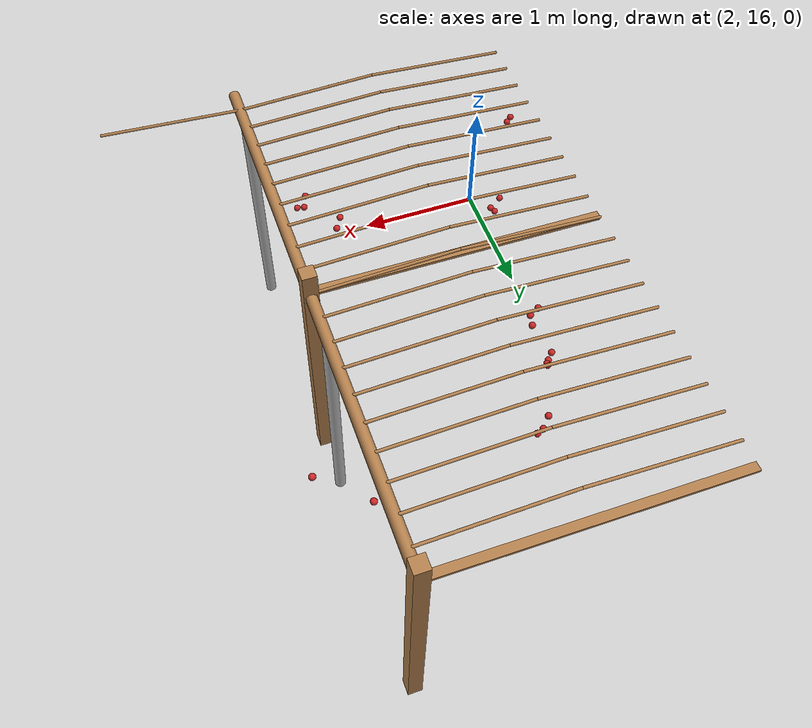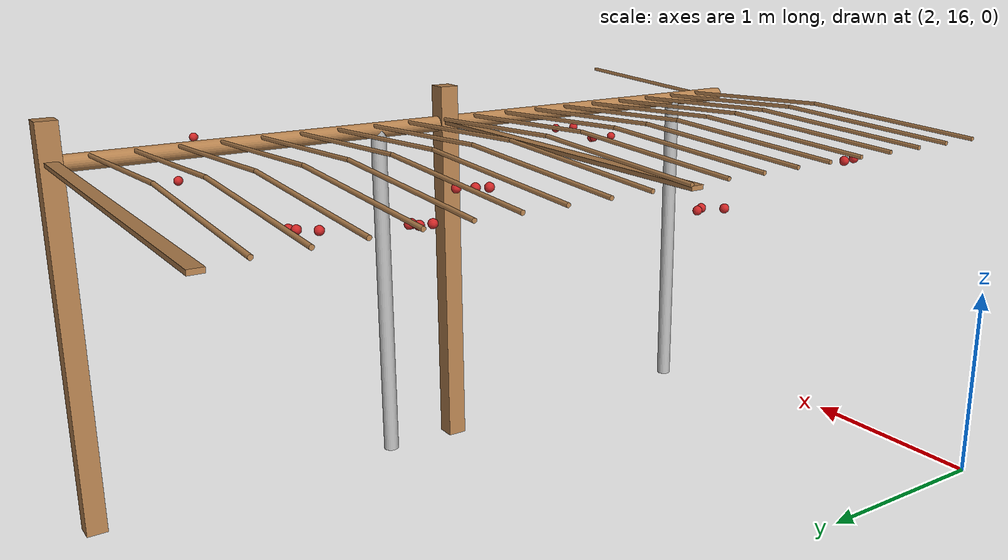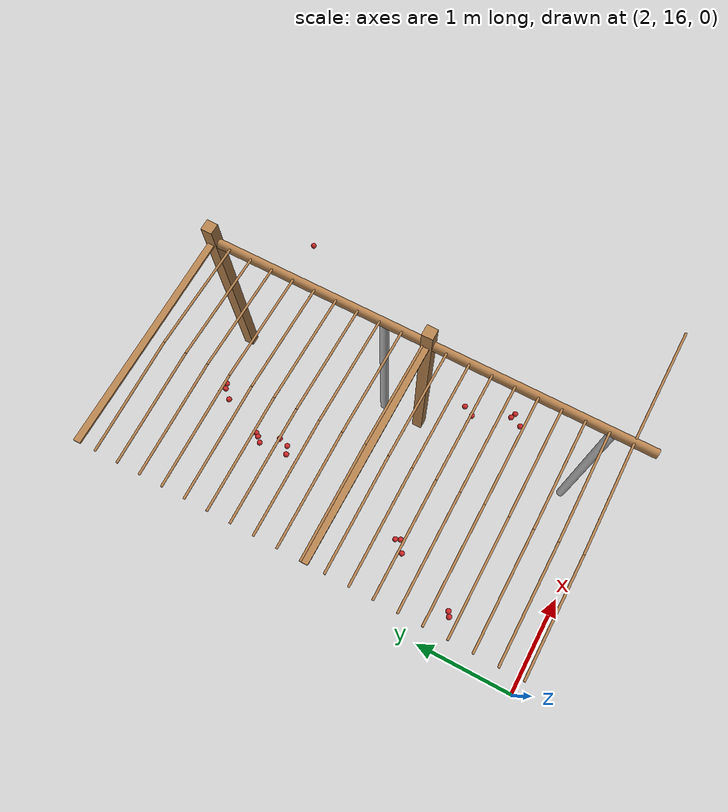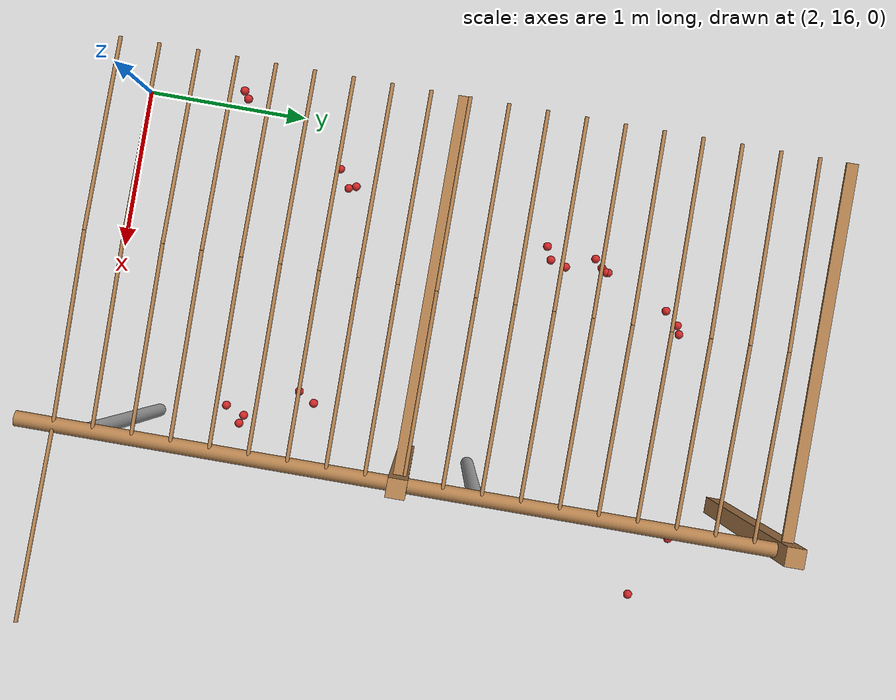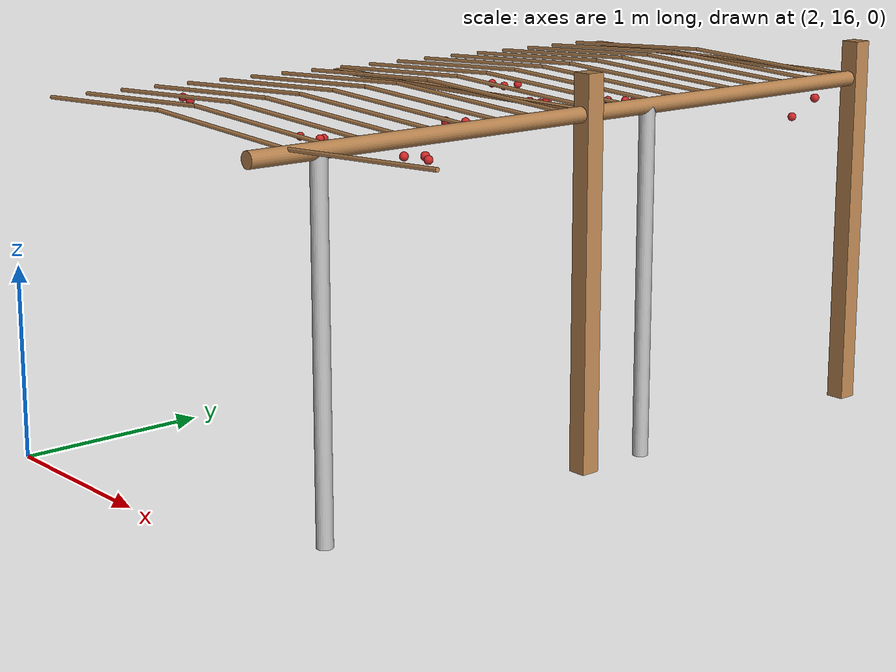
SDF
<sdf version="1.4">
 <model name="pergola">
  <include><name>post_31</name><pose>4.0 18.0 0 0 0 0</pose><uri>model://post</uri></include>
  <include><name>post_32</name><pose>4.0 20.0 0 0 0 0</pose><uri>model://post</uri></include>
  <link name="beam_20">
   <pose>3.0 18.0 1.81 0 0 0</pose>
   <collision name="collision"><geometry><box><size>2.0 0.06 0.02</size></box></geometry></collision>
   <visual name="visual">
    <geometry><box><size>2.0 0.06 0.02</size></box></geometry>
    <material><script><name>Gazebo/Wood</name></script></material>
   </visual>
   <inertial>
    <mass>5</mass>
    <inertia>
     <ixx>0.0016666666666666668</ixx>
     <ixy>0.0</ixy>
     <ixz>0.0</ixz>
     <iyy>1.6681666666666664</iyy>
     <iyz>0.0</iyz>
     <izz>1.6668333333333332</izz>
    </inertia>
   </inertial>
  </link>
  <link name="beam_21">
   <pose>3.0 20.0 1.81 0 0 0</pose>
   <collision name="collision"><geometry><box><size>2.0 0.06 0.02</size></box></geometry></collision>
   <visual name="visual">
    <geometry><box><size>2.0 0.06 0.02</size></box></geometry>
    <material><script><name>Gazebo/Wood</name></script></material>
   </visual>
   <inertial>
    <mass>5</mass>
    <inertia>
     <ixx>0.0016666666666666668</ixx>
     <ixy>0.0</ixy>
     <ixz>0.0</ixz>
     <iyy>1.6681666666666664</iyy>
     <iyz>0.0</iyz>
     <izz>1.6668333333333332</izz>
    </inertia>
   </inertial>
  </link>
  <include><name>tree_28</name><pose>4.0 16.4 0 0 0 0</pose><uri>model://tree_trunk</uri></include>
  <include><name>tree_29</name><pose>4.0 18.4 0 0 0 0</pose><uri>model://tree_trunk</uri></include>
  <link name="baseBranch_28">
   <pose>4.0 17.0 1.8 1.5707963267948966 0 0</pose>
   <collision name="collision">
    <geometry><cylinder><radius>0.04</radius><length>1.94</length></cylinder></geometry>
   </collision>
   <visual name="visual">
    <geometry><cylinder><radius>0.04</radius><length>1.94</length></cylinder></geometry>
    <material><script><name>Gazebo/WoodFloor</name></script></material>
   </visual>
   <inertial>
    <mass>10</mass>
    <inertia>
     <ixx>3.140333333333333</ixx>
     <ixy>0.0</ixy>
     <ixz>0.0</ixz>
     <iyy>3.140333333333333</iyy>
     <iyz>0.0</iyz>
     <izz>0.008</izz>
    </inertia>
   </inertial>
  </link>
  <link name="baseBranch_29">
   <pose>4.0 19.0 1.8 1.5707963267948966 0 0</pose>
   <collision name="collision">
    <geometry><cylinder><radius>0.04</radius><length>1.94</length></cylinder></geometry>
   </collision>
   <visual name="visual">
    <geometry><cylinder><radius>0.04</radius><length>1.94</length></cylinder></geometry>
    <material><script><name>Gazebo/WoodFloor</name></script></material>
   </visual>
   <inertial>
    <mass>10</mass>
    <inertia>
     <ixx>3.140333333333333</ixx>
     <ixy>0.0</ixy>
     <ixz>0.0</ixz>
     <iyy>3.140333333333333</iyy>
     <iyz>0.0</iyz>
     <izz>0.008</izz>
    </inertia>
   </inertial>
  </link>
  <link name="vine_362">
   <pose>2.5 16.23 1.85 0 1.5208379310729538 0</pose>
   <collision name="collision">
    <geometry><cylinder><radius>0.01</radius><length>1.0012492197250393</length></cylinder></geometry>
   </collision>
   <visual name="visual">
    <geometry><cylinder><radius>0.01</radius><length>1.0012492197250393</length></cylinder></geometry>
    <material><script><name>Gazebo/WoodFloor</name></script></material>
   </visual>
   <inertial>
    <mass>5</mass>
    <inertia>
     <ixx>0.41783333333333345</ixx>
     <ixy>0.0</ixy>
     <ixz>0.0</ixz>
     <iyy>0.41783333333333345</iyy>
     <iyz>0.0</iyz>
     <izz>0.00025</izz>
    </inertia>
   </inertial>
  </link>
  <link name="vine_363">
   <pose>3.5 16.23 1.85 0 -1.5208379310729538 0</pose>
   <collision name="collision">
    <geometry><cylinder><radius>0.01</radius><length>1.0012492197250393</length></cylinder></geometry>
   </collision>
   <visual name="visual">
    <geometry><cylinder><radius>0.01</radius><length>1.0012492197250393</length></cylinder></geometry>
    <material><script><name>Gazebo/WoodFloor</name></script></material>
   </visual>
   <inertial>
    <mass>5</mass>
    <inertia>
     <ixx>0.41783333333333345</ixx>
     <ixy>0.0</ixy>
     <ixz>0.0</ixz>
     <iyy>0.41783333333333345</iyy>
     <iyz>0.0</iyz>
     <izz>0.00025</izz>
    </inertia>
   </inertial>
  </link>
  <link name="vine_364">
   <pose>2.5 16.430000000000003 1.85 0 1.5208379310729538 0</pose>
   <collision name="collision">
    <geometry><cylinder><radius>0.01</radius><length>1.0012492197250393</length></cylinder></geometry>
   </collision>
   <visual name="visual">
    <geometry><cylinder><radius>0.01</radius><length>1.0012492197250393</length></cylinder></geometry>
    <material><script><name>Gazebo/WoodFloor</name></script></material>
   </visual>
   <inertial>
    <mass>5</mass>
    <inertia>
     <ixx>0.41783333333333345</ixx>
     <ixy>0.0</ixy>
     <ixz>0.0</ixz>
     <iyy>0.41783333333333345</iyy>
     <iyz>0.0</iyz>
     <izz>0.00025</izz>
    </inertia>
   </inertial>
  </link>
  <link name="vine_365">
   <pose>3.5 16.430000000000003 1.85 0 -1.5208379310729538 0</pose>
   <collision name="collision">
    <geometry><cylinder><radius>0.01</radius><length>1.0012492197250393</length></cylinder></geometry>
   </collision>
   <visual name="visual">
    <geometry><cylinder><radius>0.01</radius><length>1.0012492197250393</length></cylinder></geometry>
    <material><script><name>Gazebo/WoodFloor</name></script></material>
   </visual>
   <inertial>
    <mass>5</mass>
    <inertia>
     <ixx>0.41783333333333345</ixx>
     <ixy>0.0</ixy>
     <ixz>0.0</ixz>
     <iyy>0.41783333333333345</iyy>
     <iyz>0.0</iyz>
     <izz>0.00025</izz>
    </inertia>
   </inertial>
  </link>
  <link name="vine_366">
   <pose>2.5 16.630000000000003 1.85 0 1.5208379310729538 0</pose>
   <collision name="collision">
    <geometry><cylinder><radius>0.01</radius><length>1.0012492197250393</length></cylinder></geometry>
   </collision>
   <visual name="visual">
    <geometry><cylinder><radius>0.01</radius><length>1.0012492197250393</length></cylinder></geometry>
    <material><script><name>Gazebo/WoodFloor</name></script></material>
   </visual>
   <inertial>
    <mass>5</mass>
    <inertia>
     <ixx>0.41783333333333345</ixx>
     <ixy>0.0</ixy>
     <ixz>0.0</ixz>
     <iyy>0.41783333333333345</iyy>
     <iyz>0.0</iyz>
     <izz>0.00025</izz>
    </inertia>
   </inertial>
  </link>
  <link name="vine_367">
   <pose>3.5 16.630000000000003 1.85 0 -1.5208379310729538 0</pose>
   <collision name="collision">
    <geometry><cylinder><radius>0.01</radius><length>1.0012492197250393</length></cylinder></geometry>
   </collision>
   <visual name="visual">
    <geometry><cylinder><radius>0.01</radius><length>1.0012492197250393</length></cylinder></geometry>
    <material><script><name>Gazebo/WoodFloor</name></script></material>
   </visual>
   <inertial>
    <mass>5</mass>
    <inertia>
     <ixx>0.41783333333333345</ixx>
     <ixy>0.0</ixy>
     <ixz>0.0</ixz>
     <iyy>0.41783333333333345</iyy>
     <iyz>0.0</iyz>
     <izz>0.00025</izz>
    </inertia>
   </inertial>
  </link>
  <link name="vine_368">
   <pose>2.5 16.830000000000002 1.85 0 1.5208379310729538 0</pose>
   <collision name="collision">
    <geometry><cylinder><radius>0.01</radius><length>1.0012492197250393</length></cylinder></geometry>
   </collision>
   <visual name="visual">
    <geometry><cylinder><radius>0.01</radius><length>1.0012492197250393</length></cylinder></geometry>
    <material><script><name>Gazebo/WoodFloor</name></script></material>
   </visual>
   <inertial>
    <mass>5</mass>
    <inertia>
     <ixx>0.41783333333333345</ixx>
     <ixy>0.0</ixy>
     <ixz>0.0</ixz>
     <iyy>0.41783333333333345</iyy>
     <iyz>0.0</iyz>
     <izz>0.00025</izz>
    </inertia>
   </inertial>
  </link>
  <link name="vine_369">
   <pose>3.5 16.830000000000002 1.85 0 -1.5208379310729538 0</pose>
   <collision name="collision">
    <geometry><cylinder><radius>0.01</radius><length>1.0012492197250393</length></cylinder></geometry>
   </collision>
   <visual name="visual">
    <geometry><cylinder><radius>0.01</radius><length>1.0012492197250393</length></cylinder></geometry>
    <material><script><name>Gazebo/WoodFloor</name></script></material>
   </visual>
   <inertial>
    <mass>5</mass>
    <inertia>
     <ixx>0.41783333333333345</ixx>
     <ixy>0.0</ixy>
     <ixz>0.0</ixz>
     <iyy>0.41783333333333345</iyy>
     <iyz>0.0</iyz>
     <izz>0.00025</izz>
    </inertia>
   </inertial>
  </link>
  <link name="vine_370">
   <pose>2.5 17.03 1.85 0 1.5208379310729538 0</pose>
   <collision name="collision">
    <geometry><cylinder><radius>0.01</radius><length>1.0012492197250393</length></cylinder></geometry>
   </collision>
   <visual name="visual">
    <geometry><cylinder><radius>0.01</radius><length>1.0012492197250393</length></cylinder></geometry>
    <material><script><name>Gazebo/WoodFloor</name></script></material>
   </visual>
   <inertial>
    <mass>5</mass>
    <inertia>
     <ixx>0.41783333333333345</ixx>
     <ixy>0.0</ixy>
     <ixz>0.0</ixz>
     <iyy>0.41783333333333345</iyy>
     <iyz>0.0</iyz>
     <izz>0.00025</izz>
    </inertia>
   </inertial>
  </link>
  <link name="vine_371">
   <pose>3.5 17.03 1.85 0 -1.5208379310729538 0</pose>
   <collision name="collision">
    <geometry><cylinder><radius>0.01</radius><length>1.0012492197250393</length></cylinder></geometry>
   </collision>
   <visual name="visual">
    <geometry><cylinder><radius>0.01</radius><length>1.0012492197250393</length></cylinder></geometry>
    <material><script><name>Gazebo/WoodFloor</name></script></material>
   </visual>
   <inertial>
    <mass>5</mass>
    <inertia>
     <ixx>0.41783333333333345</ixx>
     <ixy>0.0</ixy>
     <ixz>0.0</ixz>
     <iyy>0.41783333333333345</iyy>
     <iyz>0.0</iyz>
     <izz>0.00025</izz>
    </inertia>
   </inertial>
  </link>
  <link name="vine_372">
   <pose>2.5 17.23 1.85 0 1.5208379310729538 0</pose>
   <collision name="collision">
    <geometry><cylinder><radius>0.01</radius><length>1.0012492197250393</length></cylinder></geometry>
   </collision>
   <visual name="visual">
    <geometry><cylinder><radius>0.01</radius><length>1.0012492197250393</length></cylinder></geometry>
    <material><script><name>Gazebo/WoodFloor</name></script></material>
   </visual>
   <inertial>
    <mass>5</mass>
    <inertia>
     <ixx>0.41783333333333345</ixx>
     <ixy>0.0</ixy>
     <ixz>0.0</ixz>
     <iyy>0.41783333333333345</iyy>
     <iyz>0.0</iyz>
     <izz>0.00025</izz>
    </inertia>
   </inertial>
  </link>
  <link name="vine_373">
   <pose>3.5 17.23 1.85 0 -1.5208379310729538 0</pose>
   <collision name="collision">
    <geometry><cylinder><radius>0.01</radius><length>1.0012492197250393</length></cylinder></geometry>
   </collision>
   <visual name="visual">
    <geometry><cylinder><radius>0.01</radius><length>1.0012492197250393</length></cylinder></geometry>
    <material><script><name>Gazebo/WoodFloor</name></script></material>
   </visual>
   <inertial>
    <mass>5</mass>
    <inertia>
     <ixx>0.41783333333333345</ixx>
     <ixy>0.0</ixy>
     <ixz>0.0</ixz>
     <iyy>0.41783333333333345</iyy>
     <iyz>0.0</iyz>
     <izz>0.00025</izz>
    </inertia>
   </inertial>
  </link>
  <link name="vine_374">
   <pose>2.5 17.430000000000003 1.85 0 1.5208379310729538 0</pose>
   <collision name="collision">
    <geometry><cylinder><radius>0.01</radius><length>1.0012492197250393</length></cylinder></geometry>
   </collision>
   <visual name="visual">
    <geometry><cylinder><radius>0.01</radius><length>1.0012492197250393</length></cylinder></geometry>
    <material><script><name>Gazebo/WoodFloor</name></script></material>
   </visual>
   <inertial>
    <mass>5</mass>
    <inertia>
     <ixx>0.41783333333333345</ixx>
     <ixy>0.0</ixy>
     <ixz>0.0</ixz>
     <iyy>0.41783333333333345</iyy>
     <iyz>0.0</iyz>
     <izz>0.00025</izz>
    </inertia>
   </inertial>
  </link>
  <link name="vine_375">
   <pose>3.5 17.430000000000003 1.85 0 -1.5208379310729538 0</pose>
   <collision name="collision">
    <geometry><cylinder><radius>0.01</radius><length>1.0012492197250393</length></cylinder></geometry>
   </collision>
   <visual name="visual">
    <geometry><cylinder><radius>0.01</radius><length>1.0012492197250393</length></cylinder></geometry>
    <material><script><name>Gazebo/WoodFloor</name></script></material>
   </visual>
   <inertial>
    <mass>5</mass>
    <inertia>
     <ixx>0.41783333333333345</ixx>
     <ixy>0.0</ixy>
     <ixz>0.0</ixz>
     <iyy>0.41783333333333345</iyy>
     <iyz>0.0</iyz>
     <izz>0.00025</izz>
    </inertia>
   </inertial>
  </link>
  <link name="vine_376">
   <pose>2.5 17.630000000000003 1.85 0 1.5208379310729538 0</pose>
   <collision name="collision">
    <geometry><cylinder><radius>0.01</radius><length>1.0012492197250393</length></cylinder></geometry>
   </collision>
   <visual name="visual">
    <geometry><cylinder><radius>0.01</radius><length>1.0012492197250393</length></cylinder></geometry>
    <material><script><name>Gazebo/WoodFloor</name></script></material>
   </visual>
   <inertial>
    <mass>5</mass>
    <inertia>
     <ixx>0.41783333333333345</ixx>
     <ixy>0.0</ixy>
     <ixz>0.0</ixz>
     <iyy>0.41783333333333345</iyy>
     <iyz>0.0</iyz>
     <izz>0.00025</izz>
    </inertia>
   </inertial>
  </link>
  <link name="vine_377">
   <pose>3.5 17.630000000000003 1.85 0 -1.5208379310729538 0</pose>
   <collision name="collision">
    <geometry><cylinder><radius>0.01</radius><length>1.0012492197250393</length></cylinder></geometry>
   </collision>
   <visual name="visual">
    <geometry><cylinder><radius>0.01</radius><length>1.0012492197250393</length></cylinder></geometry>
    <material><script><name>Gazebo/WoodFloor</name></script></material>
   </visual>
   <inertial>
    <mass>5</mass>
    <inertia>
     <ixx>0.41783333333333345</ixx>
     <ixy>0.0</ixy>
     <ixz>0.0</ixz>
     <iyy>0.41783333333333345</iyy>
     <iyz>0.0</iyz>
     <izz>0.00025</izz>
    </inertia>
   </inertial>
  </link>
  <link name="vine_378">
   <pose>2.5 17.830000000000002 1.85 0 1.5208379310729538 0</pose>
   <collision name="collision">
    <geometry><cylinder><radius>0.01</radius><length>1.0012492197250393</length></cylinder></geometry>
   </collision>
   <visual name="visual">
    <geometry><cylinder><radius>0.01</radius><length>1.0012492197250393</length></cylinder></geometry>
    <material><script><name>Gazebo/WoodFloor</name></script></material>
   </visual>
   <inertial>
    <mass>5</mass>
    <inertia>
     <ixx>0.41783333333333345</ixx>
     <ixy>0.0</ixy>
     <ixz>0.0</ixz>
     <iyy>0.41783333333333345</iyy>
     <iyz>0.0</iyz>
     <izz>0.00025</izz>
    </inertia>
   </inertial>
  </link>
  <link name="vine_379">
   <pose>3.5 17.830000000000002 1.85 0 -1.5208379310729538 0</pose>
   <collision name="collision">
    <geometry><cylinder><radius>0.01</radius><length>1.0012492197250393</length></cylinder></geometry>
   </collision>
   <visual name="visual">
    <geometry><cylinder><radius>0.01</radius><length>1.0012492197250393</length></cylinder></geometry>
    <material><script><name>Gazebo/WoodFloor</name></script></material>
   </visual>
   <inertial>
    <mass>5</mass>
    <inertia>
     <ixx>0.41783333333333345</ixx>
     <ixy>0.0</ixy>
     <ixz>0.0</ixz>
     <iyy>0.41783333333333345</iyy>
     <iyz>0.0</iyz>
     <izz>0.00025</izz>
    </inertia>
   </inertial>
  </link>
  <link name="vine_380">
   <pose>2.5 18.03 1.85 0 1.5208379310729538 0</pose>
   <collision name="collision">
    <geometry><cylinder><radius>0.01</radius><length>1.0012492197250393</length></cylinder></geometry>
   </collision>
   <visual name="visual">
    <geometry><cylinder><radius>0.01</radius><length>1.0012492197250393</length></cylinder></geometry>
    <material><script><name>Gazebo/WoodFloor</name></script></material>
   </visual>
   <inertial>
    <mass>5</mass>
    <inertia>
     <ixx>0.41783333333333345</ixx>
     <ixy>0.0</ixy>
     <ixz>0.0</ixz>
     <iyy>0.41783333333333345</iyy>
     <iyz>0.0</iyz>
     <izz>0.00025</izz>
    </inertia>
   </inertial>
  </link>
  <link name="vine_381">
   <pose>3.5 18.03 1.85 0 -1.5208379310729538 0</pose>
   <collision name="collision">
    <geometry><cylinder><radius>0.01</radius><length>1.0012492197250393</length></cylinder></geometry>
   </collision>
   <visual name="visual">
    <geometry><cylinder><radius>0.01</radius><length>1.0012492197250393</length></cylinder></geometry>
    <material><script><name>Gazebo/WoodFloor</name></script></material>
   </visual>
   <inertial>
    <mass>5</mass>
    <inertia>
     <ixx>0.41783333333333345</ixx>
     <ixy>0.0</ixy>
     <ixz>0.0</ixz>
     <iyy>0.41783333333333345</iyy>
     <iyz>0.0</iyz>
     <izz>0.00025</izz>
    </inertia>
   </inertial>
  </link>
  <link name="vine_382">
   <pose>2.5 18.23 1.85 0 1.5208379310729538 0</pose>
   <collision name="collision">
    <geometry><cylinder><radius>0.01</radius><length>1.0012492197250393</length></cylinder></geometry>
   </collision>
   <visual name="visual">
    <geometry><cylinder><radius>0.01</radius><length>1.0012492197250393</length></cylinder></geometry>
    <material><script><name>Gazebo/WoodFloor</name></script></material>
   </visual>
   <inertial>
    <mass>5</mass>
    <inertia>
     <ixx>0.41783333333333345</ixx>
     <ixy>0.0</ixy>
     <ixz>0.0</ixz>
     <iyy>0.41783333333333345</iyy>
     <iyz>0.0</iyz>
     <izz>0.00025</izz>
    </inertia>
   </inertial>
  </link>
  <link name="vine_383">
   <pose>3.5 18.23 1.85 0 -1.5208379310729538 0</pose>
   <collision name="collision">
    <geometry><cylinder><radius>0.01</radius><length>1.0012492197250393</length></cylinder></geometry>
   </collision>
   <visual name="visual">
    <geometry><cylinder><radius>0.01</radius><length>1.0012492197250393</length></cylinder></geometry>
    <material><script><name>Gazebo/WoodFloor</name></script></material>
   </visual>
   <inertial>
    <mass>5</mass>
    <inertia>
     <ixx>0.41783333333333345</ixx>
     <ixy>0.0</ixy>
     <ixz>0.0</ixz>
     <iyy>0.41783333333333345</iyy>
     <iyz>0.0</iyz>
     <izz>0.00025</izz>
    </inertia>
   </inertial>
  </link>
  <link name="vine_384">
   <pose>2.5 18.430000000000003 1.85 0 1.5208379310729538 0</pose>
   <collision name="collision">
    <geometry><cylinder><radius>0.01</radius><length>1.0012492197250393</length></cylinder></geometry>
   </collision>
   <visual name="visual">
    <geometry><cylinder><radius>0.01</radius><length>1.0012492197250393</length></cylinder></geometry>
    <material><script><name>Gazebo/WoodFloor</name></script></material>
   </visual>
   <inertial>
    <mass>5</mass>
    <inertia>
     <ixx>0.41783333333333345</ixx>
     <ixy>0.0</ixy>
     <ixz>0.0</ixz>
     <iyy>0.41783333333333345</iyy>
     <iyz>0.0</iyz>
     <izz>0.00025</izz>
    </inertia>
   </inertial>
  </link>
  <link name="vine_385">
   <pose>3.5 18.430000000000003 1.85 0 -1.5208379310729538 0</pose>
   <collision name="collision">
    <geometry><cylinder><radius>0.01</radius><length>1.0012492197250393</length></cylinder></geometry>
   </collision>
   <visual name="visual">
    <geometry><cylinder><radius>0.01</radius><length>1.0012492197250393</length></cylinder></geometry>
    <material><script><name>Gazebo/WoodFloor</name></script></material>
   </visual>
   <inertial>
    <mass>5</mass>
    <inertia>
     <ixx>0.41783333333333345</ixx>
     <ixy>0.0</ixy>
     <ixz>0.0</ixz>
     <iyy>0.41783333333333345</iyy>
     <iyz>0.0</iyz>
     <izz>0.00025</izz>
    </inertia>
   </inertial>
  </link>
  <link name="vine_386">
   <pose>2.5 18.630000000000003 1.85 0 1.5208379310729538 0</pose>
   <collision name="collision">
    <geometry><cylinder><radius>0.01</radius><length>1.0012492197250393</length></cylinder></geometry>
   </collision>
   <visual name="visual">
    <geometry><cylinder><radius>0.01</radius><length>1.0012492197250393</length></cylinder></geometry>
    <material><script><name>Gazebo/WoodFloor</name></script></material>
   </visual>
   <inertial>
    <mass>5</mass>
    <inertia>
     <ixx>0.41783333333333345</ixx>
     <ixy>0.0</ixy>
     <ixz>0.0</ixz>
     <iyy>0.41783333333333345</iyy>
     <iyz>0.0</iyz>
     <izz>0.00025</izz>
    </inertia>
   </inertial>
  </link>
  <link name="vine_387">
   <pose>3.5 18.630000000000003 1.85 0 -1.5208379310729538 0</pose>
   <collision name="collision">
    <geometry><cylinder><radius>0.01</radius><length>1.0012492197250393</length></cylinder></geometry>
   </collision>
   <visual name="visual">
    <geometry><cylinder><radius>0.01</radius><length>1.0012492197250393</length></cylinder></geometry>
    <material><script><name>Gazebo/WoodFloor</name></script></material>
   </visual>
   <inertial>
    <mass>5</mass>
    <inertia>
     <ixx>0.41783333333333345</ixx>
     <ixy>0.0</ixy>
     <ixz>0.0</ixz>
     <iyy>0.41783333333333345</iyy>
     <iyz>0.0</iyz>
     <izz>0.00025</izz>
    </inertia>
   </inertial>
  </link>
  <link name="vine_388">
   <pose>2.5 18.830000000000002 1.85 0 1.5208379310729538 0</pose>
   <collision name="collision">
    <geometry><cylinder><radius>0.01</radius><length>1.0012492197250393</length></cylinder></geometry>
   </collision>
   <visual name="visual">
    <geometry><cylinder><radius>0.01</radius><length>1.0012492197250393</length></cylinder></geometry>
    <material><script><name>Gazebo/WoodFloor</name></script></material>
   </visual>
   <inertial>
    <mass>5</mass>
    <inertia>
     <ixx>0.41783333333333345</ixx>
     <ixy>0.0</ixy>
     <ixz>0.0</ixz>
     <iyy>0.41783333333333345</iyy>
     <iyz>0.0</iyz>
     <izz>0.00025</izz>
    </inertia>
   </inertial>
  </link>
  <link name="vine_389">
   <pose>3.5 18.830000000000002 1.85 0 -1.5208379310729538 0</pose>
   <collision name="collision">
    <geometry><cylinder><radius>0.01</radius><length>1.0012492197250393</length></cylinder></geometry>
   </collision>
   <visual name="visual">
    <geometry><cylinder><radius>0.01</radius><length>1.0012492197250393</length></cylinder></geometry>
    <material><script><name>Gazebo/WoodFloor</name></script></material>
   </visual>
   <inertial>
    <mass>5</mass>
    <inertia>
     <ixx>0.41783333333333345</ixx>
     <ixy>0.0</ixy>
     <ixz>0.0</ixz>
     <iyy>0.41783333333333345</iyy>
     <iyz>0.0</iyz>
     <izz>0.00025</izz>
    </inertia>
   </inertial>
  </link>
  <link name="vine_390">
   <pose>2.5 19.03 1.85 0 1.5208379310729538 0</pose>
   <collision name="collision">
    <geometry><cylinder><radius>0.01</radius><length>1.0012492197250393</length></cylinder></geometry>
   </collision>
   <visual name="visual">
    <geometry><cylinder><radius>0.01</radius><length>1.0012492197250393</length></cylinder></geometry>
    <material><script><name>Gazebo/WoodFloor</name></script></material>
   </visual>
   <inertial>
    <mass>5</mass>
    <inertia>
     <ixx>0.41783333333333345</ixx>
     <ixy>0.0</ixy>
     <ixz>0.0</ixz>
     <iyy>0.41783333333333345</iyy>
     <iyz>0.0</iyz>
     <izz>0.00025</izz>
    </inertia>
   </inertial>
  </link>
  <link name="vine_391">
   <pose>3.5 19.03 1.85 0 -1.5208379310729538 0</pose>
   <collision name="collision">
    <geometry><cylinder><radius>0.01</radius><length>1.0012492197250393</length></cylinder></geometry>
   </collision>
   <visual name="visual">
    <geometry><cylinder><radius>0.01</radius><length>1.0012492197250393</length></cylinder></geometry>
    <material><script><name>Gazebo/WoodFloor</name></script></material>
   </visual>
   <inertial>
    <mass>5</mass>
    <inertia>
     <ixx>0.41783333333333345</ixx>
     <ixy>0.0</ixy>
     <ixz>0.0</ixz>
     <iyy>0.41783333333333345</iyy>
     <iyz>0.0</iyz>
     <izz>0.00025</izz>
    </inertia>
   </inertial>
  </link>
  <link name="vine_392">
   <pose>2.5 19.230000000000004 1.85 0 1.5208379310729538 0</pose>
   <collision name="collision">
    <geometry><cylinder><radius>0.01</radius><length>1.0012492197250393</length></cylinder></geometry>
   </collision>
   <visual name="visual">
    <geometry><cylinder><radius>0.01</radius><length>1.0012492197250393</length></cylinder></geometry>
    <material><script><name>Gazebo/WoodFloor</name></script></material>
   </visual>
   <inertial>
    <mass>5</mass>
    <inertia>
     <ixx>0.41783333333333345</ixx>
     <ixy>0.0</ixy>
     <ixz>0.0</ixz>
     <iyy>0.41783333333333345</iyy>
     <iyz>0.0</iyz>
     <izz>0.00025</izz>
    </inertia>
   </inertial>
  </link>
  <link name="vine_393">
   <pose>3.5 19.230000000000004 1.85 0 -1.5208379310729538 0</pose>
   <collision name="collision">
    <geometry><cylinder><radius>0.01</radius><length>1.0012492197250393</length></cylinder></geometry>
   </collision>
   <visual name="visual">
    <geometry><cylinder><radius>0.01</radius><length>1.0012492197250393</length></cylinder></geometry>
    <material><script><name>Gazebo/WoodFloor</name></script></material>
   </visual>
   <inertial>
    <mass>5</mass>
    <inertia>
     <ixx>0.41783333333333345</ixx>
     <ixy>0.0</ixy>
     <ixz>0.0</ixz>
     <iyy>0.41783333333333345</iyy>
     <iyz>0.0</iyz>
     <izz>0.00025</izz>
    </inertia>
   </inertial>
  </link>
  <link name="vine_394">
   <pose>2.5 19.430000000000003 1.85 0 1.5208379310729538 0</pose>
   <collision name="collision">
    <geometry><cylinder><radius>0.01</radius><length>1.0012492197250393</length></cylinder></geometry>
   </collision>
   <visual name="visual">
    <geometry><cylinder><radius>0.01</radius><length>1.0012492197250393</length></cylinder></geometry>
    <material><script><name>Gazebo/WoodFloor</name></script></material>
   </visual>
   <inertial>
    <mass>5</mass>
    <inertia>
     <ixx>0.41783333333333345</ixx>
     <ixy>0.0</ixy>
     <ixz>0.0</ixz>
     <iyy>0.41783333333333345</iyy>
     <iyz>0.0</iyz>
     <izz>0.00025</izz>
    </inertia>
   </inertial>
  </link>
  <link name="vine_395">
   <pose>3.5 19.430000000000003 1.85 0 -1.5208379310729538 0</pose>
   <collision name="collision">
    <geometry><cylinder><radius>0.01</radius><length>1.0012492197250393</length></cylinder></geometry>
   </collision>
   <visual name="visual">
    <geometry><cylinder><radius>0.01</radius><length>1.0012492197250393</length></cylinder></geometry>
    <material><script><name>Gazebo/WoodFloor</name></script></material>
   </visual>
   <inertial>
    <mass>5</mass>
    <inertia>
     <ixx>0.41783333333333345</ixx>
     <ixy>0.0</ixy>
     <ixz>0.0</ixz>
     <iyy>0.41783333333333345</iyy>
     <iyz>0.0</iyz>
     <izz>0.00025</izz>
    </inertia>
   </inertial>
  </link>
  <link name="vine_396">
   <pose>2.5 19.630000000000003 1.85 0 1.5208379310729538 0</pose>
   <collision name="collision">
    <geometry><cylinder><radius>0.01</radius><length>1.0012492197250393</length></cylinder></geometry>
   </collision>
   <visual name="visual">
    <geometry><cylinder><radius>0.01</radius><length>1.0012492197250393</length></cylinder></geometry>
    <material><script><name>Gazebo/WoodFloor</name></script></material>
   </visual>
   <inertial>
    <mass>5</mass>
    <inertia>
     <ixx>0.41783333333333345</ixx>
     <ixy>0.0</ixy>
     <ixz>0.0</ixz>
     <iyy>0.41783333333333345</iyy>
     <iyz>0.0</iyz>
     <izz>0.00025</izz>
    </inertia>
   </inertial>
  </link>
  <link name="vine_397">
   <pose>3.5 19.630000000000003 1.85 0 -1.5208379310729538 0</pose>
   <collision name="collision">
    <geometry><cylinder><radius>0.01</radius><length>1.0012492197250393</length></cylinder></geometry>
   </collision>
   <visual name="visual">
    <geometry><cylinder><radius>0.01</radius><length>1.0012492197250393</length></cylinder></geometry>
    <material><script><name>Gazebo/WoodFloor</name></script></material>
   </visual>
   <inertial>
    <mass>5</mass>
    <inertia>
     <ixx>0.41783333333333345</ixx>
     <ixy>0.0</ixy>
     <ixz>0.0</ixz>
     <iyy>0.41783333333333345</iyy>
     <iyz>0.0</iyz>
     <izz>0.00025</izz>
    </inertia>
   </inertial>
  </link>
  <link name="vine_398">
   <pose>2.5 19.830000000000002 1.85 0 1.5208379310729538 0</pose>
   <collision name="collision">
    <geometry><cylinder><radius>0.01</radius><length>1.0012492197250393</length></cylinder></geometry>
   </collision>
   <visual name="visual">
    <geometry><cylinder><radius>0.01</radius><length>1.0012492197250393</length></cylinder></geometry>
    <material><script><name>Gazebo/WoodFloor</name></script></material>
   </visual>
   <inertial>
    <mass>5</mass>
    <inertia>
     <ixx>0.41783333333333345</ixx>
     <ixy>0.0</ixy>
     <ixz>0.0</ixz>
     <iyy>0.41783333333333345</iyy>
     <iyz>0.0</iyz>
     <izz>0.00025</izz>
    </inertia>
   </inertial>
  </link>
  <link name="vine_399">
   <pose>3.5 19.830000000000002 1.85 0 -1.5208379310729538 0</pose>
   <collision name="collision">
    <geometry><cylinder><radius>0.01</radius><length>1.0012492197250393</length></cylinder></geometry>
   </collision>
   <visual name="visual">
    <geometry><cylinder><radius>0.01</radius><length>1.0012492197250393</length></cylinder></geometry>
    <material><script><name>Gazebo/WoodFloor</name></script></material>
   </visual>
   <inertial>
    <mass>5</mass>
    <inertia>
     <ixx>0.41783333333333345</ixx>
     <ixy>0.0</ixy>
     <ixz>0.0</ixz>
     <iyy>0.41783333333333345</iyy>
     <iyz>0.0</iyz>
     <izz>0.00025</izz>
    </inertia>
   </inertial>
  </link>
  <link name="vine_562">
   <pose>4.5 16.23 1.85 0 1.5208379310729538 0</pose>
   <collision name="collision">
    <geometry><cylinder><radius>0.01</radius><length>1.0012492197250393</length></cylinder></geometry>
   </collision>
   <visual name="visual">
    <geometry><cylinder><radius>0.01</radius><length>1.0012492197250393</length></cylinder></geometry>
    <material><script><name>Gazebo/WoodFloor</name></script></material>
   </visual>
   <inertial>
    <mass>5</mass>
    <inertia>
     <ixx>0.41783333333333345</ixx>
     <ixy>0.0</ixy>
     <ixz>0.0</ixz>
     <iyy>0.41783333333333345</iyy>
     <iyz>0.0</iyz>
     <izz>0.00025</izz>
    </inertia>
   </inertial>
  </link>
  <link name="fruit_17">
   <pose>2.6875868006532104 18.815287319987785 1.637580635463588 0 0 0</pose>
   <collision name="fruit_collision_17"><geometry><sphere><radius>0.022</radius></sphere></geometry></collision>
   <visual name="visual">
    <geometry><sphere><radius>0.022</radius></sphere></geometry>
    <material><script><name>Gazebo/Red</name></script></material>
   </visual>
   <inertial>
    <mass>0.05</mass>
    <inertia>
     <ixx>9.679999999999999e-06</ixx>
     <ixy>0.0</ixy>
     <ixz>0.0</ixz>
     <iyy>9.679999999999999e-06</iyy>
     <iyz>0.0</iyz>
     <izz>9.679999999999999e-06</izz>
    </inertia>
   </inertial>
   <sensor name="fruit_contact_17" type="contact">
    <contact><collision>fruit_collision_17</collision></contact>
   </sensor>
  </link>
  <link name="fruit_123">
   <pose>2.8915122828000506 19.224252649578066 1.6257390305447799 0 0 0</pose>
   <collision name="fruit_collision_123"><geometry><sphere><radius>0.022</radius></sphere></geometry></collision>
   <visual name="visual">
    <geometry><sphere><radius>0.022</radius></sphere></geometry>
    <material><script><name>Gazebo/Red</name></script></material>
   </visual>
   <inertial>
    <mass>0.05</mass>
    <inertia>
     <ixx>9.679999999999999e-06</ixx>
     <ixy>0.0</ixy>
     <ixz>0.0</ixz>
     <iyy>9.679999999999999e-06</iyy>
     <iyz>0.0</iyz>
     <izz>9.679999999999999e-06</izz>
    </inertia>
   </inertial>
   <sensor name="fruit_contact_123" type="contact">
    <contact><collision>fruit_collision_123</collision></contact>
   </sensor>
  </link>
  <link name="fruit_131">
   <pose>4.349814395655715 19.248349658757654 1.796745653734228 0 0 0</pose>
   <collision name="fruit_collision_131"><geometry><sphere><radius>0.022</radius></sphere></geometry></collision>
   <visual name="visual">
    <geometry><sphere><radius>0.022</radius></sphere></geometry>
    <material><script><name>Gazebo/Red</name></script></material>
   </visual>
   <inertial>
    <mass>0.05</mass>
    <inertia>
     <ixx>9.679999999999999e-06</ixx>
     <ixy>0.0</ixy>
     <ixz>0.0</ixz>
     <iyy>9.679999999999999e-06</iyy>
     <iyz>0.0</iyz>
     <izz>9.679999999999999e-06</izz>
    </inertia>
   </inertial>
   <sensor name="fruit_contact_131" type="contact">
    <contact><collision>fruit_collision_131</collision></contact>
   </sensor>
  </link>
  <link name="fruit_192">
   <pose>3.6210364651680096 17.426042681219684 1.7752643009589664 0 0 0</pose>
   <collision name="fruit_collision_192"><geometry><sphere><radius>0.022</radius></sphere></geometry></collision>
   <visual name="visual">
    <geometry><sphere><radius>0.022</radius></sphere></geometry>
    <material><script><name>Gazebo/Red</name></script></material>
   </visual>
   <inertial>
    <mass>0.05</mass>
    <inertia>
     <ixx>9.679999999999999e-06</ixx>
     <ixy>0.0</ixy>
     <ixz>0.0</ixz>
     <iyy>9.679999999999999e-06</iyy>
     <iyz>0.0</iyz>
     <izz>9.679999999999999e-06</izz>
    </inertia>
   </inertial>
   <sensor name="fruit_contact_192" type="contact">
    <contact><collision>fruit_collision_192</collision></contact>
   </sensor>
  </link>
  <link name="fruit_253">
   <pose>2.6751697932977514 18.54878731358315 1.757911389661145 0 0 0</pose>
   <collision name="fruit_collision_253"><geometry><sphere><radius>0.022</radius></sphere></geometry></collision>
   <visual name="visual">
    <geometry><sphere><radius>0.022</radius></sphere></geometry>
    <material><script><name>Gazebo/Red</name></script></material>
   </visual>
   <inertial>
    <mass>0.05</mass>
    <inertia>
     <ixx>9.679999999999999e-06</ixx>
     <ixy>0.0</ixy>
     <ixz>0.0</ixz>
     <iyy>9.679999999999999e-06</iyy>
     <iyz>0.0</iyz>
     <izz>9.679999999999999e-06</izz>
    </inertia>
   </inertial>
   <sensor name="fruit_contact_253" type="contact">
    <contact><collision>fruit_collision_253</collision></contact>
   </sensor>
  </link>
  <link name="fruit_292">
   <pose>2.44436045574199 17.420038681974532 1.5569434456137163 0 0 0</pose>
   <collision name="fruit_collision_292"><geometry><sphere><radius>0.022</radius></sphere></geometry></collision>
   <visual name="visual">
    <geometry><sphere><radius>0.022</radius></sphere></geometry>
    <material><script><name>Gazebo/Red</name></script></material>
   </visual>
   <inertial>
    <mass>0.05</mass>
    <inertia>
     <ixx>9.679999999999999e-06</ixx>
     <ixy>0.0</ixy>
     <ixz>0.0</ixz>
     <iyy>9.679999999999999e-06</iyy>
     <iyz>0.0</iyz>
     <izz>9.679999999999999e-06</izz>
    </inertia>
   </inertial>
   <sensor name="fruit_contact_292" type="contact">
    <contact><collision>fruit_collision_292</collision></contact>
   </sensor>
  </link>
  <link name="fruit_297">
   <pose>3.7626602103771534 17.056884889596297 1.6674354426067897 0 0 0</pose>
   <collision name="fruit_collision_297"><geometry><sphere><radius>0.022</radius></sphere></geometry></collision>
   <visual name="visual">
    <geometry><sphere><radius>0.022</radius></sphere></geometry>
    <material><script><name>Gazebo/Red</name></script></material>
   </visual>
   <inertial>
    <mass>0.05</mass>
    <inertia>
     <ixx>9.679999999999999e-06</ixx>
     <ixy>0.0</ixy>
     <ixz>0.0</ixz>
     <iyy>9.679999999999999e-06</iyy>
     <iyz>0.0</iyz>
     <izz>9.679999999999999e-06</izz>
    </inertia>
   </inertial>
   <sensor name="fruit_contact_297" type="contact">
    <contact><collision>fruit_collision_297</collision></contact>
   </sensor>
  </link>
  <link name="fruit_319">
   <pose>4.054507820820515 19.429843897637877 1.6481218531500499 0 0 0</pose>
   <collision name="fruit_collision_319"><geometry><sphere><radius>0.022</radius></sphere></geometry></collision>
   <visual name="visual">
    <geometry><sphere><radius>0.022</radius></sphere></geometry>
    <material><script><name>Gazebo/Red</name></script></material>
   </visual>
   <inertial>
    <mass>0.05</mass>
    <inertia>
     <ixx>9.679999999999999e-06</ixx>
     <ixy>0.0</ixy>
     <ixz>0.0</ixz>
     <iyy>9.679999999999999e-06</iyy>
     <iyz>0.0</iyz>
     <izz>9.679999999999999e-06</izz>
    </inertia>
   </inertial>
   <sensor name="fruit_contact_319" type="contact">
    <contact><collision>fruit_collision_319</collision></contact>
   </sensor>
  </link>
  <link name="fruit_376">
   <pose>2.727852347203314 18.85659930127638 1.6281304492736683 0 0 0</pose>
   <collision name="fruit_collision_376"><geometry><sphere><radius>0.022</radius></sphere></geometry></collision>
   <visual name="visual">
    <geometry><sphere><radius>0.022</radius></sphere></geometry>
    <material><script><name>Gazebo/Red</name></script></material>
   </visual>
   <inertial>
    <mass>0.05</mass>
    <inertia>
     <ixx>9.679999999999999e-06</ixx>
     <ixy>0.0</ixy>
     <ixz>0.0</ixz>
     <iyy>9.679999999999999e-06</iyy>
     <iyz>0.0</iyz>
     <izz>9.679999999999999e-06</izz>
    </inertia>
   </inertial>
   <sensor name="fruit_contact_376" type="contact">
    <contact><collision>fruit_collision_376</collision></contact>
   </sensor>
  </link>
  <link name="fruit_384">
   <pose>2.1940399215700124 16.913010033703916 1.7641137028811218 0 0 0</pose>
   <collision name="fruit_collision_384"><geometry><sphere><radius>0.022</radius></sphere></geometry></collision>
   <visual name="visual">
    <geometry><sphere><radius>0.022</radius></sphere></geometry>
    <material><script><name>Gazebo/Red</name></script></material>
   </visual>
   <inertial>
    <mass>0.05</mass>
    <inertia>
     <ixx>9.679999999999999e-06</ixx>
     <ixy>0.0</ixy>
     <ixz>0.0</ixz>
     <iyy>9.679999999999999e-06</iyy>
     <iyz>0.0</iyz>
     <izz>9.679999999999999e-06</izz>
    </inertia>
   </inertial>
   <sensor name="fruit_contact_384" type="contact">
    <contact><collision>fruit_collision_384</collision></contact>
   </sensor>
  </link>
  <link name="fruit_419">
   <pose>3.7995458355660396 17.152440376657786 1.6631028065961153 0 0 0</pose>
   <collision name="fruit_collision_419"><geometry><sphere><radius>0.022</radius></sphere></geometry></collision>
   <visual name="visual">
    <geometry><sphere><radius>0.022</radius></sphere></geometry>
    <material><script><name>Gazebo/Red</name></script></material>
   </visual>
   <inertial>
    <mass>0.05</mass>
    <inertia>
     <ixx>9.679999999999999e-06</ixx>
     <ixy>0.0</ixy>
     <ixz>0.0</ixz>
     <iyy>9.679999999999999e-06</iyy>
     <iyz>0.0</iyz>
     <izz>9.679999999999999e-06</izz>
    </inertia>
   </inertial>
   <sensor name="fruit_contact_419" type="contact">
    <contact><collision>fruit_collision_419</collision></contact>
   </sensor>
  </link>
  <link name="fruit_569">
   <pose>3.001216571483334 19.312243193990007 1.6207536292755689 0 0 0</pose>
   <collision name="fruit_collision_569"><geometry><sphere><radius>0.022</radius></sphere></geometry></collision>
   <visual name="visual">
    <geometry><sphere><radius>0.022</radius></sphere></geometry>
    <material><script><name>Gazebo/Red</name></script></material>
   </visual>
   <inertial>
    <mass>0.05</mass>
    <inertia>
     <ixx>9.679999999999999e-06</ixx>
     <ixy>0.0</ixy>
     <ixz>0.0</ixz>
     <iyy>9.679999999999999e-06</iyy>
     <iyz>0.0</iyz>
     <izz>9.679999999999999e-06</izz>
    </inertia>
   </inertial>
   <sensor name="fruit_contact_569" type="contact">
    <contact><collision>fruit_collision_569</collision></contact>
   </sensor>
  </link>
  <link name="fruit_608">
   <pose>2.5368311031185944 17.479054398541503 1.5489031237086759 0 0 0</pose>
   <collision name="fruit_collision_608"><geometry><sphere><radius>0.022</radius></sphere></geometry></collision>
   <visual name="visual">
    <geometry><sphere><radius>0.022</radius></sphere></geometry>
    <material><script><name>Gazebo/Red</name></script></material>
   </visual>
   <inertial>
    <mass>0.05</mass>
    <inertia>
     <ixx>9.679999999999999e-06</ixx>
     <ixy>0.0</ixy>
     <ixz>0.0</ixz>
     <iyy>9.679999999999999e-06</iyy>
     <iyz>0.0</iyz>
     <izz>9.679999999999999e-06</izz>
    </inertia>
   </inertial>
   <sensor name="fruit_contact_608" type="contact">
    <contact><collision>fruit_collision_608</collision></contact>
   </sensor>
  </link>
  <link name="fruit_613">
   <pose>2.95725302544198 19.295588583138905 1.6246928881439193 0 0 0</pose>
   <collision name="fruit_collision_613"><geometry><sphere><radius>0.022</radius></sphere></geometry></collision>
   <visual name="visual">
    <geometry><sphere><radius>0.022</radius></sphere></geometry>
    <material><script><name>Gazebo/Red</name></script></material>
   </visual>
   <inertial>
    <mass>0.05</mass>
    <inertia>
     <ixx>9.679999999999999e-06</ixx>
     <ixy>0.0</ixy>
     <ixz>0.0</ixz>
     <iyy>9.679999999999999e-06</iyy>
     <iyz>0.0</iyz>
     <izz>9.679999999999999e-06</izz>
    </inertia>
   </inertial>
   <sensor name="fruit_contact_613" type="contact">
    <contact><collision>fruit_collision_613</collision></contact>
   </sensor>
  </link>
  <link name="fruit_628">
   <pose>2.763008189530285 18.65808610877225 1.7520587103283423 0 0 0</pose>
   <collision name="fruit_collision_628"><geometry><sphere><radius>0.022</radius></sphere></geometry></collision>
   <visual name="visual">
    <geometry><sphere><radius>0.022</radius></sphere></geometry>
    <material><script><name>Gazebo/Red</name></script></material>
   </visual>
   <inertial>
    <mass>0.05</mass>
    <inertia>
     <ixx>9.679999999999999e-06</ixx>
     <ixy>0.0</ixy>
     <ixz>0.0</ixz>
     <iyy>9.679999999999999e-06</iyy>
     <iyz>0.0</iyz>
     <izz>9.679999999999999e-06</izz>
    </inertia>
   </inertial>
   <sensor name="fruit_contact_628" type="contact">
    <contact><collision>fruit_collision_628</collision></contact>
   </sensor>
  </link>
  <link name="fruit_709">
   <pose>3.844782227855873 17.135050361333555 1.6529335534143008 0 0 0</pose>
   <collision name="fruit_collision_709"><geometry><sphere><radius>0.022</radius></sphere></geometry></collision>
   <visual name="visual">
    <geometry><sphere><radius>0.022</radius></sphere></geometry>
    <material><script><name>Gazebo/Red</name></script></material>
   </visual>
   <inertial>
    <mass>0.05</mass>
    <inertia>
     <ixx>9.679999999999999e-06</ixx>
     <ixy>0.0</ixy>
     <ixz>0.0</ixz>
     <iyy>9.679999999999999e-06</iyy>
     <iyz>0.0</iyz>
     <izz>9.679999999999999e-06</izz>
    </inertia>
   </inertial>
   <sensor name="fruit_contact_709" type="contact">
    <contact><collision>fruit_collision_709</collision></contact>
   </sensor>
  </link>
  <link name="fruit_734">
   <pose>2.7473081749371957 18.892808575634067 1.6335308453878234 0 0 0</pose>
   <collision name="fruit_collision_734"><geometry><sphere><radius>0.022</radius></sphere></geometry></collision>
   <visual name="visual">
    <geometry><sphere><radius>0.022</radius></sphere></geometry>
    <material><script><name>Gazebo/Red</name></script></material>
   </visual>
   <inertial>
    <mass>0.05</mass>
    <inertia>
     <ixx>9.679999999999999e-06</ixx>
     <ixy>0.0</ixy>
     <ixz>0.0</ixz>
     <iyy>9.679999999999999e-06</iyy>
     <iyz>0.0</iyz>
     <izz>9.679999999999999e-06</izz>
    </inertia>
   </inertial>
   <sensor name="fruit_contact_734" type="contact">
    <contact><collision>fruit_collision_734</collision></contact>
   </sensor>
  </link>
  <link name="fruit_813">
   <pose>3.66915728970216 17.50821262761776 1.7692966445245033 0 0 0</pose>
   <collision name="fruit_collision_813"><geometry><sphere><radius>0.022</radius></sphere></geometry></collision>
   <visual name="visual">
    <geometry><sphere><radius>0.022</radius></sphere></geometry>
    <material><script><name>Gazebo/Red</name></script></material>
   </visual>
   <inertial>
    <mass>0.05</mass>
    <inertia>
     <ixx>9.679999999999999e-06</ixx>
     <ixy>0.0</ixy>
     <ixz>0.0</ixz>
     <iyy>9.679999999999999e-06</iyy>
     <iyz>0.0</iyz>
     <izz>9.679999999999999e-06</izz>
    </inertia>
   </inertial>
   <sensor name="fruit_contact_813" type="contact">
    <contact><collision>fruit_collision_813</collision></contact>
   </sensor>
  </link>
  <link name="fruit_865">
   <pose>2.747298569041325 18.88133526062471 1.6343304087111474 0 0 0</pose>
   <collision name="fruit_collision_865"><geometry><sphere><radius>0.022</radius></sphere></geometry></collision>
   <visual name="visual">
    <geometry><sphere><radius>0.022</radius></sphere></geometry>
    <material><script><name>Gazebo/Red</name></script></material>
   </visual>
   <inertial>
    <mass>0.05</mass>
    <inertia>
     <ixx>9.679999999999999e-06</ixx>
     <ixy>0.0</ixy>
     <ixz>0.0</ixz>
     <iyy>9.679999999999999e-06</iyy>
     <iyz>0.0</iyz>
     <izz>9.679999999999999e-06</izz>
    </inertia>
   </inertial>
   <sensor name="fruit_contact_865" type="contact">
    <contact><collision>fruit_collision_865</collision></contact>
   </sensor>
  </link>
  <link name="fruit_881">
   <pose>2.1587985372295755 16.890462033634677 1.779845512797223 0 0 0</pose>
   <collision name="fruit_collision_881"><geometry><sphere><radius>0.022</radius></sphere></geometry></collision>
   <visual name="visual">
    <geometry><sphere><radius>0.022</radius></sphere></geometry>
    <material><script><name>Gazebo/Red</name></script></material>
   </visual>
   <inertial>
    <mass>0.05</mass>
    <inertia>
     <ixx>9.679999999999999e-06</ixx>
     <ixy>0.0</ixy>
     <ixz>0.0</ixz>
     <iyy>9.679999999999999e-06</iyy>
     <iyz>0.0</iyz>
     <izz>9.679999999999999e-06</izz>
    </inertia>
   </inertial>
   <sensor name="fruit_contact_881" type="contact">
    <contact><collision>fruit_collision_881</collision></contact>
   </sensor>
  </link>
  <link name="fruit_902">
   <pose>2.7400563930297492 18.578591075291907 1.7476182650494547 0 0 0</pose>
   <collision name="fruit_collision_902"><geometry><sphere><radius>0.022</radius></sphere></geometry></collision>
   <visual name="visual">
    <geometry><sphere><radius>0.022</radius></sphere></geometry>
    <material><script><name>Gazebo/Red</name></script></material>
   </visual>
   <inertial>
    <mass>0.05</mass>
    <inertia>
     <ixx>9.679999999999999e-06</ixx>
     <ixy>0.0</ixy>
     <ixz>0.0</ixz>
     <iyy>9.679999999999999e-06</iyy>
     <iyz>0.0</iyz>
     <izz>9.679999999999999e-06</izz>
    </inertia>
   </inertial>
   <sensor name="fruit_contact_902" type="contact">
    <contact><collision>fruit_collision_902</collision></contact>
   </sensor>
  </link>
  <link name="fruit_993">
   <pose>2.5209009871994152 17.516250420486102 1.5451050884023088 0 0 0</pose>
   <collision name="fruit_collision_993"><geometry><sphere><radius>0.022</radius></sphere></geometry></collision>
   <visual name="visual">
    <geometry><sphere><radius>0.022</radius></sphere></geometry>
    <material><script><name>Gazebo/Red</name></script></material>
   </visual>
   <inertial>
    <mass>0.05</mass>
    <inertia>
     <ixx>9.679999999999999e-06</ixx>
     <ixy>0.0</ixy>
     <ixz>0.0</ixz>
     <iyy>9.679999999999999e-06</iyy>
     <iyz>0.0</iyz>
     <izz>9.679999999999999e-06</izz>
    </inertia>
   </inertial>
   <sensor name="fruit_contact_993" type="contact">
    <contact><collision>fruit_collision_993</collision></contact>
   </sensor>
  </link>
 </model>
</sdf>
